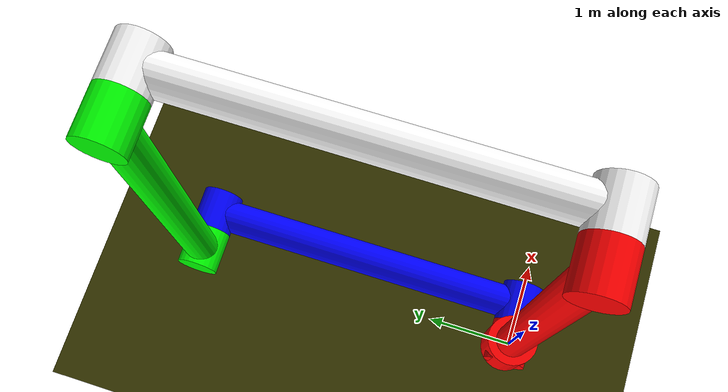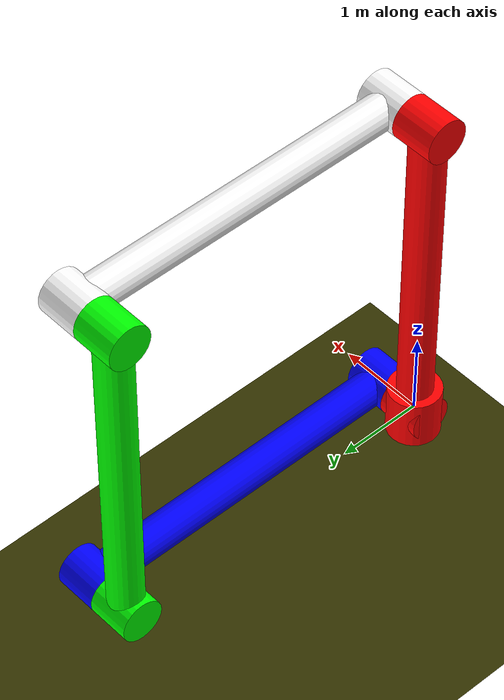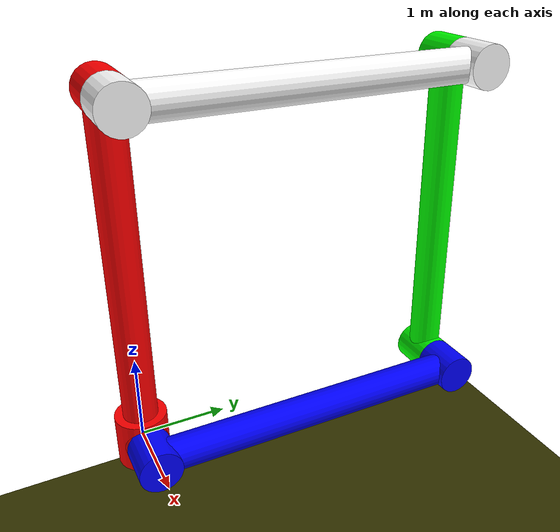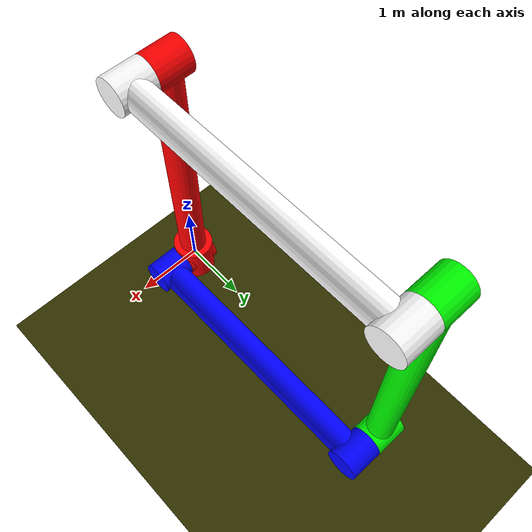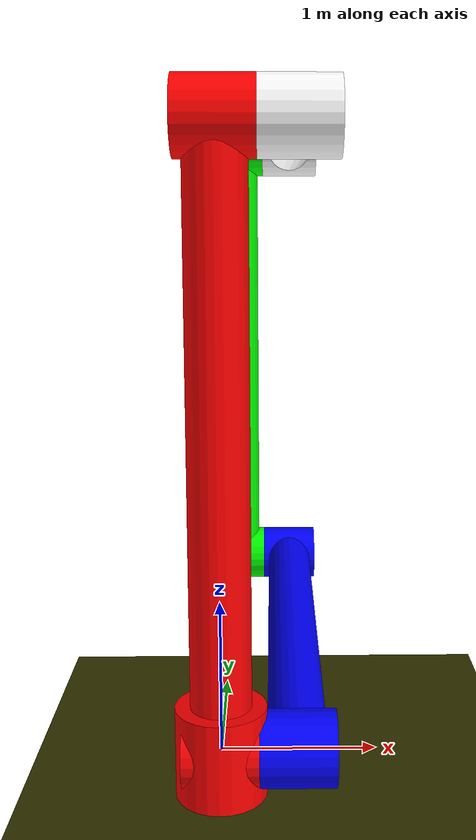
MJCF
<mujoco>
    <option gravity="0 0 0" timestep="0.002" />
    <asset>
        <material name="blue_" rgba="0 0 1 1" />
        <material name="green" rgba="0 1 0 1" />
        <material name="red__" rgba="1 0 0 1" />
        <material name="white" rgba="1 1 1 1" />
    </asset>

    <default>
        <default class="visual">
            <geom type="mesh" contype="0" conaffinity="0" group="2"/>
        </default>
    </default>

    <worldbody>
        <geom type="plane" size="10 10 0.1" pos="0 0 -2" rgba="0.2 0.2 0 0.5" />
        <light diffuse=".5 .5 .5" pos="0 0 3" dir="0 0 -1" />
        <body name="base_1" pos="0 0 0">
            <geom type="cylinder" size="0.3 0.3" pos="0 0 0" euler="0 0 0" material="red__" class="visual"/>
            <body name="link_1" pos="0 0 0">
                <joint name="base_joint" pos="0 0 0" axis="1 0 0" />
                <geom type="cylinder" size=".2    2" pos="0 0 2" euler="0 0 0" material="red__" class="visual"/>
                <geom type="cylinder" size=".25 .25" pos="0 0 4" euler="0 90 0" material="red__" class="visual"/>
                <geom type="cylinder" size=".25 .25" pos="0 0 0" euler="0 90 0" material="red__" class="visual"/>
                <body name="link_2" pos="0.5 0 0" euler="0 0 0">
                    <joint name="hinge_1" pos="0 0 0" axis="1 0 0" />
                    <geom type="cylinder" size=".2    2" pos="0 2 0" euler="90 0 0" material="blue_" class="visual"/>
                    <geom type="cylinder" size=".25 .25" pos="0 4 0" euler="0 90 0" material="blue_" class="visual"/>
                    <geom type="cylinder" size=".25 .25" pos="0 0 0" euler="0 90 0" material="blue_" class="visual"/>
                    <body name="link_3" pos="-0.5 4 0" euler="0 0 0">
                        <joint name="hinge_2" pos="0 0 0" axis="1 0 0" />
                        <geom type="cylinder" size=".2    2" pos="0 0 2" euler="0 0 0" material="green" class="visual"/>
                        <geom type="cylinder" size=".25 .25" pos="0 0 0" euler="0 90 0" material="green" class="visual"/>
                        <geom type="cylinder" size=".25 .25" pos="0 0 4" euler="0 90 0" material="green" class="visual"/>
                        <body name="link_4" pos="0.5 0 4" euler="0 0 0">
                            <joint name="hinge_3" pos="0 0 0" axis="1 0 0" />
                            <geom type="cylinder" size=".2    2" pos="0 -2 0" euler="90 0 0" material="white" class="visual"/>
                            <geom type="cylinder" size=".25 .25" pos="0 0 0" euler="0 90 0" material="white" class="visual"/>
                            <geom type="cylinder" size=".25 .25" pos="0 -4 0" euler="0 90 0" material="white" class="visual"/>
                        </body>
                    </body>
                </body>
            </body>
        </body>
    </worldbody>
    <equality>
        <connect name="kinematic_link1" active="true" body1="link_1" body2="link_4" anchor="0 0 4" />
    </equality>
    <actuator>
        <motor joint="hinge_1" ctrlrange="-100000 100000" ctrllimited="true" />
        <motor joint="hinge_2" ctrlrange="-100000 100000" ctrllimited="true" />
    </actuator>
</mujoco>
